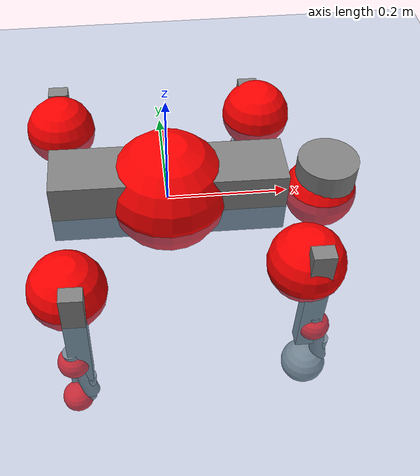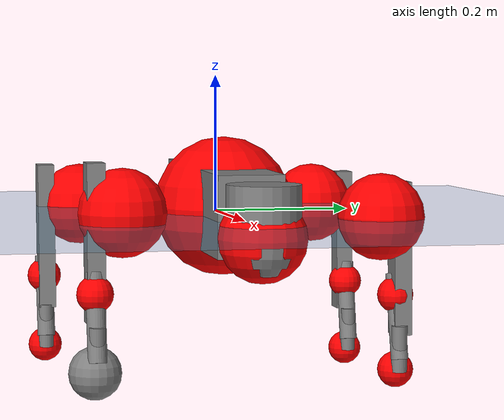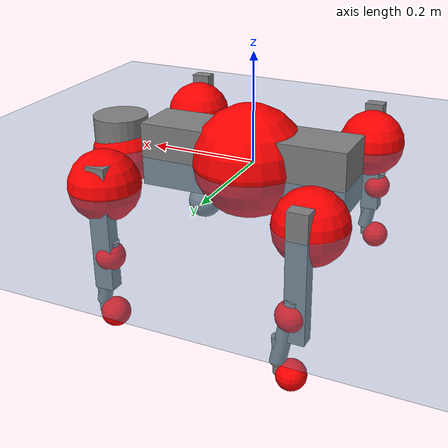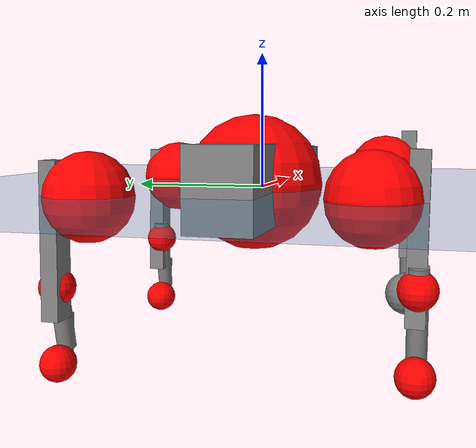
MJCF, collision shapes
<mujoco model="go2">
  <compiler angle="radian" assetdir="assets" balanceinertia="true" inertiafromgeom="false"/>

  <option timestep="0.005" density="1.2" viscosity="2e-05"/>

  <size nkey="1"/>

  <visual>
    <quality shadowsize="8192"/>
    <map shadowclip="0.5"/>
  </visual>

  <default>
    <default class="/">
      <geom contype="0" conaffinity="0" group="1" solref="-1000 -80"/>
      <site size="0.01 0.005 0.005" group="5"/>
      <general forcelimited="true" biastype="affine" gainprm="20" biasprm="0 -20 -0.5"/>
      <default class="go2">
        <joint armature="0.01" damping="0.01" frictionloss="0.2"/>
        <geom condim="1" margin="0.001"/>
        <default class="visual">
          <geom type="mesh" group="2"/>
        </default>
        <default class="collision">
          <geom group="3"/>
          <default class="foot">
            <geom size="0.022 0 0" condim="6" priority="1" friction="0.8 0.02 0.01" solimp="0.015 1 0.022"/>
          </default>
        </default>
        <default class="reward_collision_sphere">
          <geom group="5" rgba="1 0 0 1"/>
        </default>
      </default>
    </default>
  </default>

  <asset>
    <texture type="skybox" colorspace="auto" name="//unnamed_texture_0" builtin="gradient" rgb1="0.95 0.95 0.95" rgb2="0.95 0.95 0.95" width="100" height="600"/>
    <texture type="2d" colorspace="auto" name="texplane" builtin="checker" rgb1="0.345 0.575 0.748" rgb2="0.345 0.575 0.748" markrgb="1 1 1" width="512" height="512"/>
    <material name="MatPlane" class="/" texture="texplane" texuniform="true" texrepeat="2 2" specular="0.9"/>
    <material name="metal" class="/" rgba="0.9 0.95 0.95 1"/>
    <material name="black" class="/" rgba="0 0 0 1"/>
    <material name="white" class="/"/>
    <material name="gray" class="/" rgba="0.671705 0.692426 0.77427 1"/>
    <mesh name="base_0" class="/" file="base_0.obj"/>
    <mesh name="base_1" class="/" file="base_1.obj"/>
    <mesh name="base_2" class="/" file="base_2.obj"/>
    <mesh name="base_3" class="/" file="base_3.obj"/>
    <mesh name="base_4" class="/" file="base_4.obj"/>
    <mesh name="hip_0" class="/" file="hip_0.obj"/>
    <mesh name="hip_1" class="/" file="hip_1.obj"/>
    <mesh name="thigh_0" class="/" file="thigh_0.obj"/>
    <mesh name="thigh_1" class="/" file="thigh_1.obj"/>
    <mesh name="thigh_mirror_0" class="/" file="thigh_mirror_0.obj"/>
    <mesh name="thigh_mirror_1" class="/" file="thigh_mirror_1.obj"/>
    <mesh name="calf_0" class="/" file="calf_0.obj"/>
    <mesh name="calf_1" class="/" file="calf_1.obj"/>
    <mesh name="calf_mirror_0" class="/" file="calf_mirror_0.obj"/>
    <mesh name="calf_mirror_1" class="/" file="calf_mirror_1.obj"/>
    <mesh name="foot" class="/" file="foot.obj"/>
  </asset>

  <worldbody>
    <geom name="floor" class="/" size="100 100 0.125" type="plane" group="0" material="MatPlane"/>
    <light name="toplight_shadow" class="/" pos="0 0 5" dir="0.0990148 0.0990148 -0.990148" type="directional" ambient="0.04 0.04 0.04" diffuse="0.55 0.55 0.55" specular="0.12 0.12 0.12"/>
    <light name="toplight_fill" class="/" pos="0 0 5" dir="0.0990148 0.0990148 -0.990148" type="directional" castshadow="false" ambient="0.04 0.04 0.04" diffuse="0.3 0.3 0.3" specular="0.08 0.08 0.08"/>
    <body name="trunk" childclass="go2" pos="0.0014834 0.0115901 0.0070637" quat="0.999983 -9.05222e-06 0.00555021 -0.00177088">
      <inertial pos="0.0300295 0.0165482 -0.0147181" quat="0.0103237 0.724858 0.0446189 0.687374" mass="7.63381" diaginertia="0.113404 1.38381 0.00084055"/>
      <joint name="//unnamed_joint_0" type="free" armature="0" damping="0" frictionloss="0"/>
      <geom name="//unnamed_geom_1" class="visual" material="black" mesh="base_0"/>
      <geom name="//unnamed_geom_2" class="visual" material="black" mesh="base_1"/>
      <geom name="//unnamed_geom_3" class="visual" material="black" mesh="base_2"/>
      <geom name="//unnamed_geom_4" class="visual" material="white" mesh="base_3"/>
      <geom name="//unnamed_geom_5" class="visual" material="gray" mesh="base_4"/>
      <geom name="trunk_1" class="collision" size="0.193714 0.0481453 0.0587013" type="box"/>
      <geom name="trunk_2" class="collision" size="0.0514923 0.0463431" pos="0.267625 0 0.00509727" type="cylinder"/>
      <geom name="trunk_3" class="collision" size="0.0484028" pos="0.275137 0 -0.0305836"/>
      <geom name="//unnamed_geom_9" class="reward_collision_sphere" size="0.102985"/>
      <geom name="//unnamed_geom_10" class="reward_collision_sphere" size="0.0617908" pos="0.26293 0 -0.0229377"/>
      <site name="imu" pos="-0.00565988 -0.0138682 0.00780522" size="0.0102985"/>
      <camera name="track" pos="0 -3.28156 0" quat="0.707107 0.707107 0 0" mode="trackcom"/>
      <camera name="ego_camera" pos="0.292979 0 0.0229377" quat="-0.5 -0.5 0.5 0.5"/>
      <body name="FL_hip" pos="0.178162 0.0761896 -0.00335176" quat="0.999999 -0.000740084 -0.000863923 -0.000377944">
        <inertial pos="-0.00391137 0.0169727 -0.00118413" quat="0.505022 0.523036 0.428758 0.53624" mass="0.673001" diaginertia="0.000622996 0.00734543 1.58605e-05"/>
        <joint name="FL_hip_joint" pos="0 0 0" axis="0.998783 -0.0192548 -0.0453991" range="-0.849906 1.14458" armature="0.0124667" damping="0" frictionloss="0.21712"/>
        <geom name="//unnamed_geom_11" class="visual" material="metal" mesh="hip_0"/>
        <geom name="//unnamed_geom_12" class="visual" material="gray" mesh="hip_1"/>
        <geom name="//unnamed_geom_13" class="collision" size="0.0473729 0.0205969" pos="0 0.131262 0" quat="0.707107 0.707107 0 0" type="cylinder"/>
        <geom name="//unnamed_geom_14" class="reward_collision_sphere" size="0.0617908" pos="0 0.114854 0"/>
        <body name="FL_thigh" pos="-0.0136095 0.14682 -0.00665916" quat="0.999964 0.00772499 0.00185608 0.00300618">
          <inertial pos="-0.00189736 -0.0536125 -0.0117292" quat="0.843307 0.113262 -0.0200719 0.524978" mass="1.08799" diaginertia="0.00507166 0.0544537 2.95963e-05"/>
          <joint name="FL_thigh_joint" pos="0 0 0" axis="-0.0321042 0.998211 0.0504433" range="-1.33474 3.80175" armature="0.00148801" damping="0" frictionloss="0.311231"/>
          <geom name="//unnamed_geom_15" class="visual" material="metal" mesh="thigh_0"/>
          <geom name="//unnamed_geom_16" class="visual" material="gray" mesh="thigh_1"/>
          <geom name="//unnamed_geom_17" class="collision" size="0.109679 0.0126156 0.0175074" pos="0 0 -0.0542859" quat="0.707107 0 0.707107 0" type="box"/>
          <body name="FL_calf" pos="-0.00543931 -0.00548275 -0.107481" quat="0.999999 0.000768317 0.000166815 -0.00129385">
            <inertial pos="0.0206771 0.0100541 -0.0586611" quat="0.691645 -0.0214356 -0.0211083 0.721611" mass="0.272036" diaginertia="0.00124322 0.0159792 2.17787e-06"/>
            <joint name="FL_calf_joint" pos="0 0 0" axis="0.0241421 0.999537 0.0185146" range="-3.06465 -1.10332" armature="0.0160128" damping="0.0820777" frictionloss="0.130616"/>
            <geom name="//unnamed_geom_18" class="visual" material="gray" mesh="calf_0"/>
            <geom name="//unnamed_geom_19" class="visual" material="black" mesh="calf_1"/>
            <geom name="FL_calf0" class="collision" size="0.0123582 0.0617908" pos="0.00751228 0 -0.0305836" quat="0.994493 0 -0.104807 0" type="cylinder"/>
            <geom name="//unnamed_geom_21" class="collision" size="0.0113283 0.03347" pos="0.0187807 0 -0.0754396" quat="0.999688 0 0.0249974 0" type="cylinder"/>
            <geom name="//unnamed_geom_22" class="visual" pos="0 0 -0.108572" quat="1 0 0 0" material="black" mesh="foot"/>
            <geom name="FL_foot" class="foot" size="0.0243948" pos="-0.00187807 0 -0.108572"/>
            <geom name="//unnamed_geom_24" class="reward_collision_sphere" size="0.0257462"/>
            <geom name="//unnamed_geom_25" class="reward_collision_sphere" size="0.0257462" pos="-0.00187807 0 -0.108572"/>
            <site name="FL_foot" class="foot" pos="-0.00187807 0 -0.108572" size="0.0102985"/>
          </body>
        </body>
      </body>
      <body name="FR_hip" pos="0.198476 -0.0672965 0.00965244" quat="0.999996 0.00116931 0.000710121 0.00252537">
        <inertial pos="-0.000645181 -0.0113637 0.00868588" quat="0.520591 0.552511 0.468031 0.452397" mass="0.797934" diaginertia="0.000727809 0.00709191 1.46379e-05"/>
        <joint name="FR_hip_joint" pos="0 0 0" axis="0.998687 -0.0500839 -0.0107823" stiffness="0.0867754" range="-1.11921 0.762048" armature="0.0144082" damping="0.00117192" frictionloss="0.137193"/>
        <geom name="//unnamed_geom_26" class="visual" pos="0 9.85325e-09 4.22626e-07" quat="4.63268e-05 1 0 0" material="metal" mesh="hip_0"/>
        <geom name="//unnamed_geom_27" class="visual" pos="0 1.59733e-08 -1.04532e-06" quat="4.63268e-05 1 0 0" material="gray" mesh="hip_1"/>
        <geom name="//unnamed_geom_28" class="collision" size="0.0473729 0.0205969" pos="0 -0.131262 0" quat="0.707107 0.707107 0 0" type="cylinder"/>
        <geom name="//unnamed_geom_29" class="reward_collision_sphere" size="0.0617908" pos="0 -0.114854 0"/>
        <body name="FR_thigh" pos="0.0083733 -0.154452 0.0147153" quat="1 8.52945e-05 0.000286521 0.000468234">
          <inertial pos="-0.0130487 0.0478428 -0.032162" quat="0.520189 -0.0188269 0.0772505 0.850342" mass="1.15224" diaginertia="0.00497722 0.0692343 3.01138e-05"/>
          <joint name="FR_thigh_joint" pos="0 0 0" axis="0.0166898 -0.999858 -0.00247465" range="-3.45073 1.41899" armature="0.017256" damping="0" frictionloss="0.319068"/>
          <geom name="//unnamed_geom_30" class="visual" material="metal" mesh="thigh_mirror_0"/>
          <geom name="//unnamed_geom_31" class="visual" material="gray" mesh="thigh_mirror_1"/>
          <geom name="//unnamed_geom_32" class="collision" size="0.109679 0.0126156 0.0175074" pos="0 0 -0.0542859" quat="0.707107 0 0.707107 0" type="box"/>
          <body name="FR_calf" pos="0.00854743 -0.00104437 -0.123503" quat="0.999996 -0.00116162 0.00235973 -0.00102886">
            <inertial pos="0.0169338 -0.0104024 -0.0757162" quat="0.695924 0.0300195 0.0245244 0.717068" mass="0.209264" diaginertia="0.000945319 0.011654 1.63678e-06"/>
            <joint name="FR_calf_joint" pos="0 0 0" axis="-0.0161649 -0.999847 0.00661299" range="0.689122 2.59324" armature="0.0124342" damping="0.0913628" frictionloss="0.286727"/>
            <geom name="//unnamed_geom_33" class="visual" material="gray" mesh="calf_mirror_0"/>
            <geom name="//unnamed_geom_34" class="visual" material="black" mesh="calf_mirror_1"/>
            <geom name="FR_calf0" class="collision" size="0.013388 0.0617908" pos="0.00939035 0 -0.0305836" quat="0.995004 0 -0.0998334 0" type="cylinder"/>
            <geom name="//unnamed_geom_36" class="collision" size="0.0113283 0.03347" pos="0.0187807 0 -0.0754396" quat="0.999688 0 0.0249974 0" type="cylinder"/>
            <geom name="//unnamed_geom_37" class="visual" pos="0 0 -0.108572" quat="1 0 0 0" material="black" mesh="foot"/>
            <geom name="FR_foot" class="foot" size="0.0369838" pos="-0.00187807 0 -0.108572"/>
            <geom name="//unnamed_geom_39" class="reward_collision_sphere" size="0.0257462"/>
            <geom name="//unnamed_geom_40" class="reward_collision_sphere" size="0.0257462" pos="-0.00187807 0 -0.108572"/>
            <site name="FR_foot" class="foot" pos="-0.00187807 0 -0.108572" size="0.0102985"/>
          </body>
        </body>
      </body>
      <body name="RL_hip" pos="-0.183506 0.0668058 -0.0126956" quat="0.999999 0.000474589 -0.000120391 0.000994114">
        <inertial pos="-0.000267302 0.00884106 -0.0109166" quat="0.519127 0.506957 0.498343 0.474506" mass="0.991674" diaginertia="0.000758637 0.00873523 1.58456e-05"/>
        <joint name="RL_hip_joint" pos="0 0 0" axis="-0.99911 0.0418588 0.00521098" range="-1.32909 1.20006" armature="0.0132479" damping="0.0169589" frictionloss="0.0728154"/>
        <geom name="//unnamed_geom_41" class="visual" pos="-3.73995e-09 0 -7.33117e-07" quat="4.63268e-05 0 1 0" material="metal" mesh="hip_0"/>
        <geom name="//unnamed_geom_42" class="visual" pos="-6.06291e-09 0 -6.5017e-07" quat="4.63268e-05 0 1 0" material="gray" mesh="hip_1"/>
        <geom name="//unnamed_geom_43" class="collision" size="0.0473729 0.0205969" pos="0 0.131262 0" quat="0.707107 0.707107 0 0" type="cylinder"/>
        <geom name="//unnamed_geom_44" class="reward_collision_sphere" size="0.0617908" pos="0 0.114854 0"/>
        <body name="RL_thigh" pos="-0.00158248 0.166103 -0.00620222" quat="0.999969 0.00410393 -0.00282091 -0.00602858">
          <inertial pos="-0.00566048 -0.0543587 -0.0241787" quat="0.856066 0.100257 -0.0510914 0.50447" mass="1.51061" diaginertia="0.00487101 0.0602132 2.45594e-05"/>
          <joint name="RL_thigh_joint" pos="0 0 0" axis="-0.0208349 0.996406 -0.0821091" stiffness="0.0183261" range="-0.443024 4.58348" armature="0.00441827" damping="0" frictionloss="0.311597"/>
          <geom name="//unnamed_geom_45" class="visual" material="metal" mesh="thigh_0"/>
          <geom name="//unnamed_geom_46" class="visual" material="gray" mesh="thigh_1"/>
          <geom name="//unnamed_geom_47" class="collision" size="0.109679 0.0126156 0.0175074" pos="0 0 -0.0542859" quat="0.707107 0 0.707107 0" type="box"/>
          <body name="RL_calf" pos="0.008752 0.00294622 -0.120609" quat="0.999988 -0.00269456 0.00229696 0.00349879">
            <inertial pos="0.00473166 -0.0147866 -0.0687493" quat="0.717827 0.00628717 0.00508599 0.696174" mass="0.269404" diaginertia="0.00117854 0.0189025 1.99905e-06"/>
            <joint name="RL_calf_joint" pos="0 0 0" axis="-0.000422316 1 -0.000484927" range="-3.05551 -0.85449" armature="0.00153299" damping="0" frictionloss="0.321864"/>
            <geom name="//unnamed_geom_48" class="visual" material="gray" mesh="calf_0"/>
            <geom name="//unnamed_geom_49" class="visual" material="black" mesh="calf_1"/>
            <geom name="RL_calf0" class="collision" size="0.013388 0.0617908" pos="0.00939035 0 -0.0305836" quat="0.995004 0 -0.0998334 0" type="cylinder"/>
            <geom name="//unnamed_geom_51" class="collision" size="0.0113283 0.03347" pos="0.0187807 0 -0.0754396" quat="0.999688 0 0.0249974 0" type="cylinder"/>
            <geom name="//unnamed_geom_52" class="visual" pos="0 0 -0.108572" quat="1 0 0 0" material="black" mesh="foot"/>
            <geom name="RL_foot" class="foot" size="0.0223896" pos="-0.00187807 0 -0.108572"/>
            <geom name="//unnamed_geom_54" class="reward_collision_sphere" size="0.0257462"/>
            <geom name="//unnamed_geom_55" class="reward_collision_sphere" size="0.0257462" pos="-0.00187807 0 -0.108572"/>
            <site name="RL_foot" class="foot" pos="-0.00187807 0 -0.108572" size="0.0102985"/>
          </body>
        </body>
      </body>
      <body name="RR_hip" pos="-0.16501 -0.0782674 -0.00619404" quat="0.999962 0.00653835 0.000504413 -0.00581958">
        <inertial pos="0.00227561 0.00383305 0.00410036" quat="0.502473 0.493801 0.495479 0.508116" mass="0.826287" diaginertia="0.00072808 0.00723444 1.43914e-05"/>
        <joint name="RR_hip_joint" pos="0 0 0" axis="-0.999877 -0.00578481 0.0145814" range="-0.938933 0.812241" armature="0.00232667" damping="0.0164996" frictionloss="0.0938199"/>
        <geom name="//unnamed_geom_56" class="visual" pos="3.76425e-09 9.85325e-09 -1.15574e-06" quat="2.14617e-09 4.63268e-05 4.63268e-05 -1" material="metal" mesh="hip_0"/>
        <geom name="//unnamed_geom_57" class="visual" pos="6.00282e-09 1.59733e-08 3.95146e-07" quat="2.14617e-09 4.63268e-05 4.63268e-05 -1" material="gray" mesh="hip_1"/>
        <geom name="//unnamed_geom_58" class="collision" size="0.0473729 0.0205969" pos="0 -0.131262 0" quat="0.707107 0.707107 0 0" type="cylinder"/>
        <geom name="//unnamed_geom_59" class="reward_collision_sphere" size="0.0617908" pos="0 -0.114854 0"/>
        <body name="RR_thigh" pos="0.0118812 -0.169724 0.00735524" quat="0.999991 -0.00126527 0.00397017 0.000176529">
          <inertial pos="-0.0043346 0.0492845 -0.0133688" quat="0.544887 -0.0414098 0.0811023 0.83355" mass="1.06483" diaginertia="0.00421808 0.0698338 3.20189e-05"/>
          <joint name="RR_thigh_joint" pos="0 0 0" axis="-0.000819308 -0.999998 -0.00196492" range="-4.58969 0.179435" armature="0.0188889" damping="0" frictionloss="0.237781"/>
          <geom name="//unnamed_geom_60" class="visual" material="metal" mesh="thigh_mirror_0"/>
          <geom name="//unnamed_geom_61" class="visual" material="gray" mesh="thigh_mirror_1"/>
          <geom name="//unnamed_geom_62" class="collision" size="0.109679 0.0126156 0.0175074" pos="0 0 -0.0542859" quat="0.707107 0 0.707107 0" type="box"/>
          <body name="RR_calf" pos="-0.0104931 -0.00236497 -0.117295" quat="0.999998 -0.000134342 0.00116642 -0.00137432">
            <inertial pos="0.0163249 -0.00331766 -0.072294" quat="0.703553 -0.00384963 0.00119704 0.710632" mass="0.225638" diaginertia="0.000997218 0.0153722 1.9119e-06"/>
            <joint name="RR_calf_joint" pos="0 0 0" axis="0.0177027 -0.997917 -0.0620322" range="0.543206 2.53578" armature="0.0131083" damping="0.0202449" frictionloss="0.101605"/>
            <geom name="//unnamed_geom_63" class="visual" material="gray" mesh="calf_mirror_0"/>
            <geom name="//unnamed_geom_64" class="visual" material="black" mesh="calf_mirror_1"/>
            <geom name="RR_calf0" class="collision" size="0.013388 0.0617908" pos="0.00939035 0 -0.0305836" quat="0.995004 0 -0.0998334 0" type="cylinder"/>
            <geom name="//unnamed_geom_66" class="collision" size="0.0113283 0.03347" pos="0.0187807 0 -0.0754396" quat="0.999688 0 0.0249974 0" type="cylinder"/>
            <geom name="//unnamed_geom_67" class="visual" pos="0 0 -0.108572" quat="1 0 0 0" material="black" mesh="foot"/>
            <geom name="RR_foot" class="foot" size="0.00792789" pos="-0.00187807 0 -0.108572"/>
            <geom name="//unnamed_geom_69" class="reward_collision_sphere" size="0.0257462"/>
            <geom name="//unnamed_geom_70" class="reward_collision_sphere" size="0.0257462" pos="-0.00187807 0 -0.108572"/>
            <site name="RR_foot" class="foot" pos="-0.00187807 0 -0.108572" size="0.0102985"/>
          </body>
        </body>
      </body>
    </body>
  </worldbody>

  <contact>
    <pair class="/" geom1="floor" geom2="FL_foot" name="//unnamed_contact_0"/>
    <pair class="/" geom1="floor" geom2="FR_foot" name="//unnamed_contact_1"/>
    <pair class="/" geom1="floor" geom2="RL_foot" name="//unnamed_contact_2"/>
    <pair class="/" geom1="floor" geom2="RR_foot" name="//unnamed_contact_3"/>
  </contact>

  <actuator>
    <general name="FL_hip" class="/" joint="FL_hip_joint" forcerange="-16.0746 16.0746" gainprm="21.2838" biasprm="0 -21.2838 -0.476882"/>
    <general name="FL_thigh" class="/" joint="FL_thigh_joint" forcerange="-24.8755 24.8755" gainprm="21.2838" biasprm="0 -21.2838 -0.476882"/>
    <general name="FL_calf" class="/" joint="FL_calf_joint" forcerange="-42.3873 42.3873" gainprm="21.2838" biasprm="0 -21.2838 -0.476882"/>
    <general name="FR_hip" class="/" joint="FR_hip_joint" forcerange="-33.2572 33.2572" gainprm="21.2838" biasprm="0 -21.2838 -0.476882"/>
    <general name="FR_thigh" class="/" joint="FR_thigh_joint" forcerange="-26.4448 26.4448" gainprm="21.2838" biasprm="0 -21.2838 -0.476882"/>
    <general name="FR_calf" class="/" joint="FR_calf_joint" forcerange="-68.6338 68.6338" gainprm="21.2838" biasprm="0 -21.2838 -0.476882"/>
    <general name="RL_hip" class="/" joint="RL_hip_joint" forcerange="-31.0891 31.0891" gainprm="21.2838" biasprm="0 -21.2838 -0.476882"/>
    <general name="RL_thigh" class="/" joint="RL_thigh_joint" forcerange="-26.3226 26.3226" gainprm="21.2838" biasprm="0 -21.2838 -0.476882"/>
    <general name="RL_calf" class="/" joint="RL_calf_joint" forcerange="-35.3812 35.3812" gainprm="21.2838" biasprm="0 -21.2838 -0.476882"/>
    <general name="RR_hip" class="/" joint="RR_hip_joint" forcerange="-32.933 32.933" gainprm="21.2838" biasprm="0 -21.2838 -0.476882"/>
    <general name="RR_thigh" class="/" joint="RR_thigh_joint" forcerange="-17.1274 17.1274" gainprm="21.2838" biasprm="0 -21.2838 -0.476882"/>
    <general name="RR_calf" class="/" joint="RR_calf_joint" forcerange="-20.4771 20.4771" gainprm="21.2838" biasprm="0 -21.2838 -0.476882"/>
  </actuator>

  <sensor>
    <gyro site="imu" name="imu_angular_velocity"/>
    <velocimeter site="imu" name="imu_linear_velocity"/>
    <framelinvel objtype="site" objname="FL_foot" name="FL_foot_global_linear_velocity"/>
    <framelinvel objtype="site" objname="FR_foot" name="FR_foot_global_linear_velocity"/>
    <framelinvel objtype="site" objname="RL_foot" name="RL_foot_global_linear_velocity"/>
    <framelinvel objtype="site" objname="RR_foot" name="RR_foot_global_linear_velocity"/>
  </sensor>

  <keyframe>
    <key name="home" qpos="0 0 0.325 1 0 0 0 0.1 0.8 -1.5 -0.1 -0.8 1.5 -0.1 0.8 -1.5 0.1 -0.8 1.5"/>
  </keyframe>
</mujoco>
